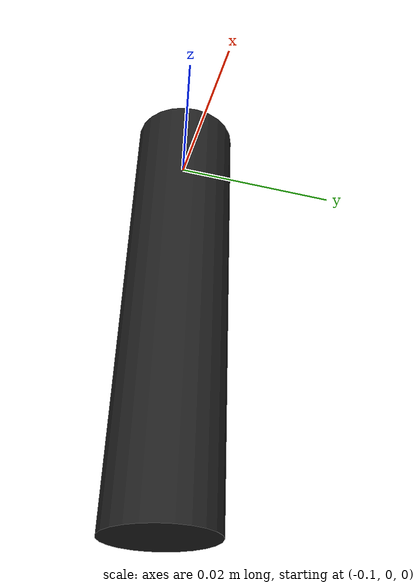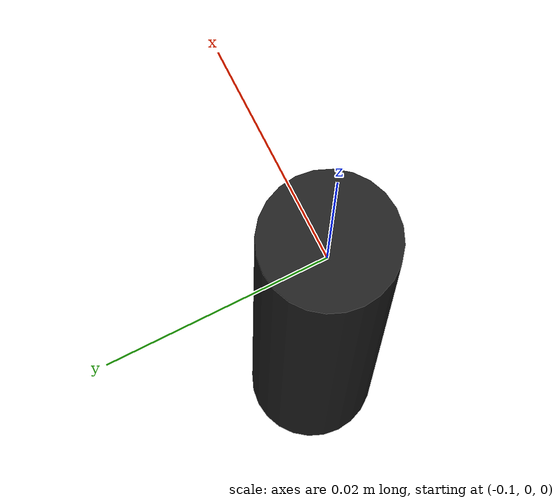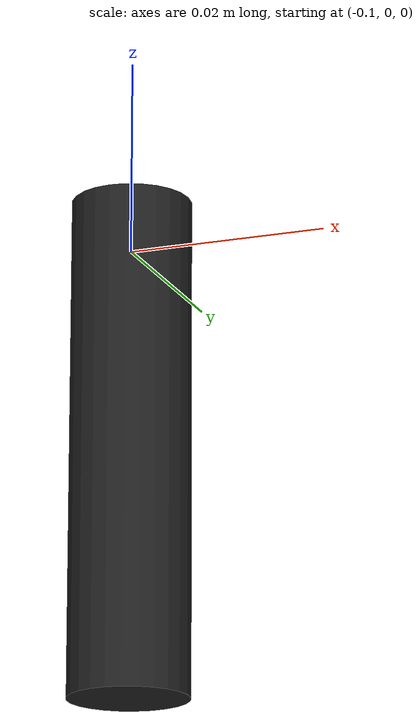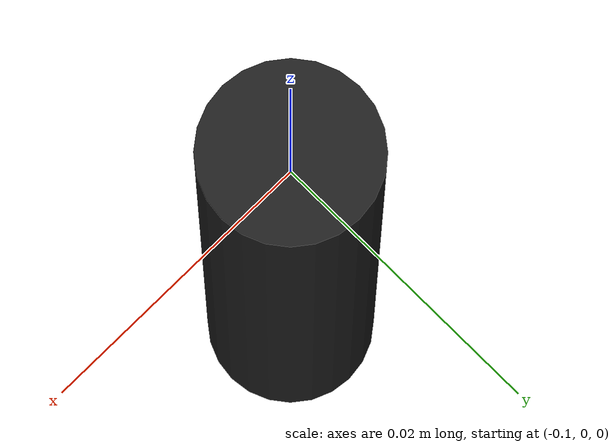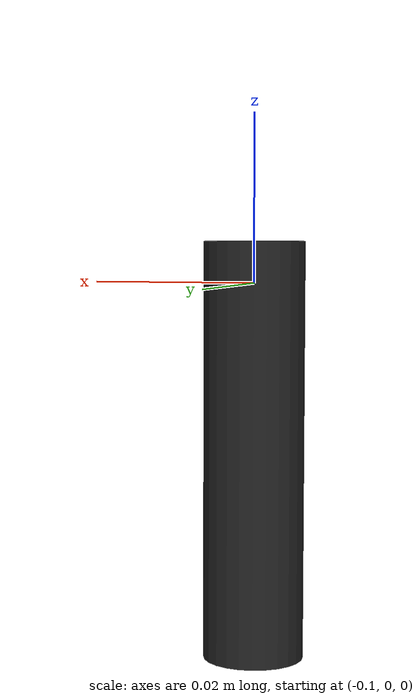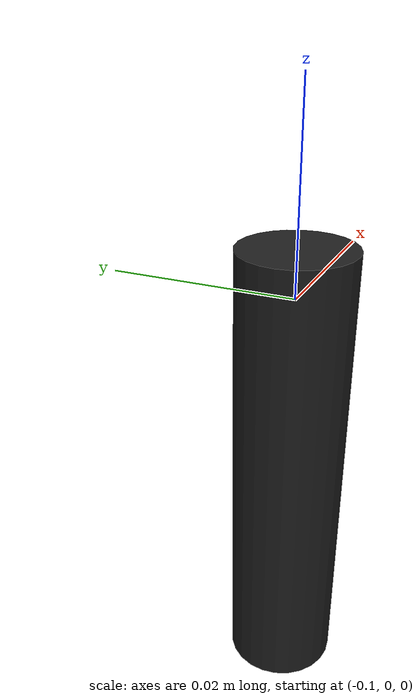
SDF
<?xml version="1.0" ?>
<sdf version='1.5'>
    <model name='rangefinder'>
        <!--lidar-->
        <pose>0 0 0 0 0 0</pose>
        <link name="link">
            <pose >-0.1 0 -0.02 0 0 0</pose>
            <inertial>
            <pose>0 0 0 0 0 0</pose>
            <mass>0.01</mass>
            <inertia>
                <ixx>2.1733e-6</ixx>
                <ixy>0</ixy>
                <ixz>0</ixz>
                <iyy>2.1733e-6</iyy>
                <iyz>0</iyz>
                <izz>1.8e-7</izz>
            </inertia>
            </inertial>
            <visual name="visual">
            <geometry>
                <cylinder><radius>0.006</radius><length>0.05</length></cylinder>
            </geometry>
            <material>
                <script>
                <name>Gazebo/Black</name>
                </script>
            </material>
            </visual>
            <sensor name="laser" type="ray">
            <pose>0 0 0 0 1.57079633 0</pose>
            <ray>
                <scan>
                <horizontal>
                    <samples>1</samples>
                    <resolution>1</resolution>
                    <min_angle>-0</min_angle>
                    <max_angle>0</max_angle>
                </horizontal>
                </scan>
                <range>
                <min>0.06</min> <!-- do not change: use min_distance (below) for realistic behavior (smaller values cause issues) -->
                <max>35</max>   <!-- do not change: use min_distance (below) for realistic behavior (bigger values cause issues) -->
                <resolution>0.01</resolution>
                </range>
                <noise>
                <type>gaussian</type>
                <mean>0.0</mean>
                <stddev>0.02</stddev>
                </noise>
            </ray>
            <plugin name="LaserPlugin" filename="libgazebo_ros_range.so">
                <robotNamespace></robotNamespace>
                <min_distance>0.2</min_distance>
                <topicName>range_down</topicName>
                <frameName>range_down</frameName>
                <max_distance>15.0</max_distance>
            </plugin>
            <always_on>1</always_on>
            <update_rate>20</update_rate>
            <visualize>true</visualize>
            </sensor>
        </link>

    </model>
</sdf>
